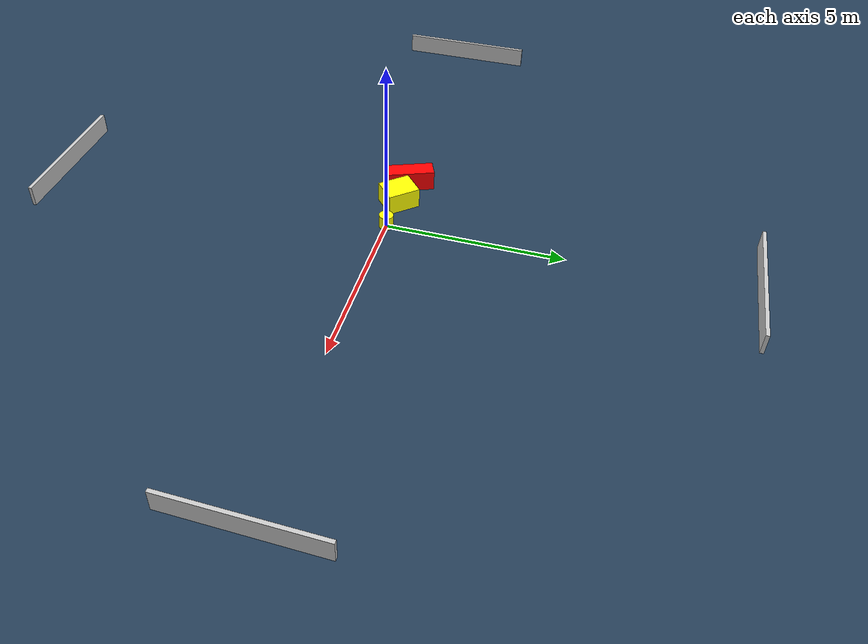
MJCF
<?xml version="1.0" ?>
<mujoco model="generated_environment">
  <option timestep="0.01" integrator="RK4" cone="elliptic"/>
  <default>
    <geom density="1"/>
  </default>
  <asset>
    <texture builtin="gradient" height="3072" name="skybox" rgb1="0.3 0.5 0.7" rgb2="0 0 0" type="skybox" width="512"/>
    <texture builtin="checker" height="300" name="groundplane" rgb1="0.2 0.3 0.4" rgb2="0.1 0.2 0.3" type="2d" width="300"/>
    <material name="groundplane" reflectance="0.2" texrepeat="5 5" texture="groundplane"/>
  </asset>
  <worldbody>
    <light dir="0 0 -1" directional="true" pos="0 0 1.5"/>
    <geom condim="3" friction="0.5 0.005 0.001" material="groundplane" name="floor" pos="0 0 0" size="0 0 0.05" type="plane"/>
    <body name="walls">
      <geom name="wall_1" condim="4" pos="-10.0 0.0 0.3" rgba="0.800000011920929 0.800000011920929 0.800000011920929 1.0" size="0.05 2.0 0.3" type="box"/>
      <geom name="wall_2" condim="4" pos="10.0 0.0 0.3" rgba="0.800000011920929 0.800000011920929 0.800000011920929 1.0" size="0.05 2.0 0.3" type="box"/>
      <geom name="wall_3" condim="4" pos="0.0 -10.0 0.3" rgba="0.800000011920929 0.800000011920929 0.800000011920929 1.0" size="2.0 0.05 0.3" type="box"/>
      <geom name="wall_4" condim="4" pos="0.0 10.0 0.3" rgba="0.800000011920929 0.800000011920929 0.800000011920929 1.0" size="2.0 0.05 0.3" type="box"/>
    </body>
    <body name="robot">
      <joint name="joint_x" type="slide" pos="0 0 0" axis="1 0 0"/>
      <joint name="joint_y" type="slide" pos="0 0 0" axis="0 1 0"/>
      <geom name="robot" type="cylinder" pos="0.0 0.0 0.2" size="0.2 0.2 0.0" mass="5.0" friction="1.0 0.005 0.0001" condim="4" rgba="1.0 1.0 0.0 1.0"/>
    </body>
    <body name="obstacle_1_movable">
      <geom name="obstacle_1_movable" condim="4" pos="-1.106383338168438 0.0446112928981761 0.3" euler="0 0 221.0452366795307" friction="0.0 0.005 0.001" rgba="1.0 1.0 0.0 1.0" size="0.3793385631417773 0.4686464242272212 0.3" type="box" mass="0.1"/>
      <joint type="free"/>
    </body>
    <body name="obstacle_2_static">
      <geom name="obstacle_2_static" condim="4" pos="-1.9898147295106363 0.08653497621348805 0.3" euler="0 0 112.10680534726477" friction="0.0 0.005 0.001" rgba="1.0 0.0 0.0 1.0" size="0.724737216840706 0.2464822813032303 0.3" type="box"/>
    </body>
  </worldbody>
  <actuator>
    <motor name="actuator_x" joint="joint_x" gear="1" ctrlrange="-1 1"/>
    <motor name="actuator_y" joint="joint_y" gear="1" ctrlrange="-1 1"/>
  </actuator>
</mujoco>
